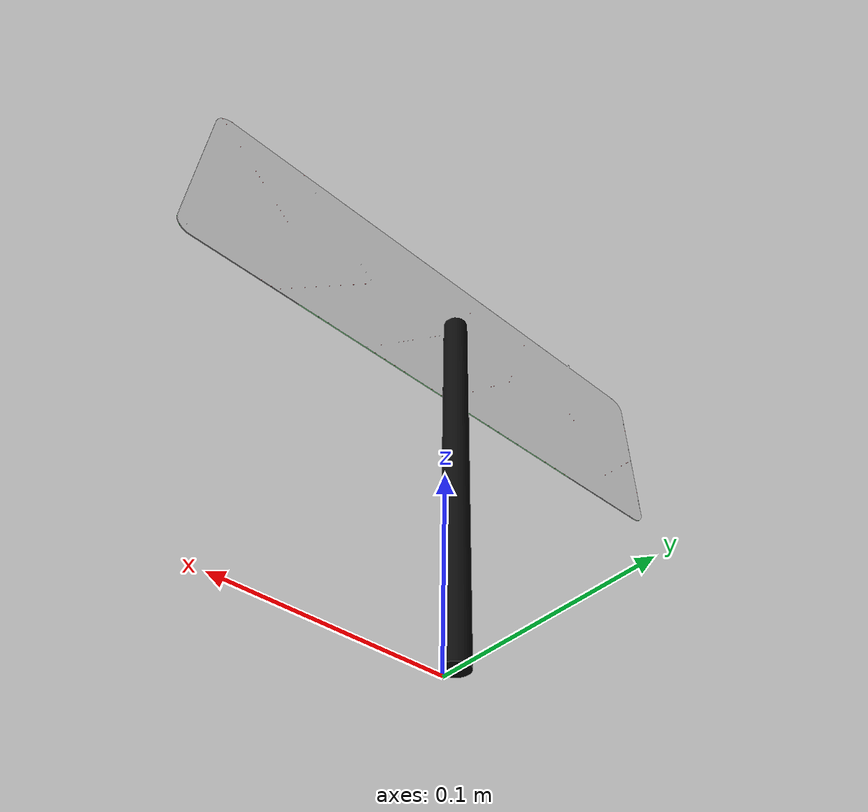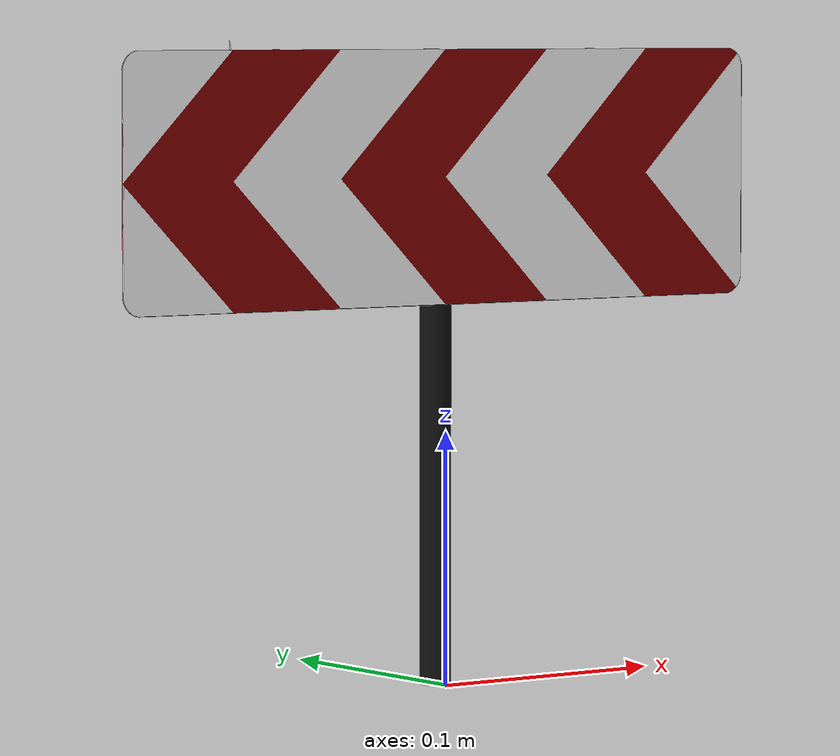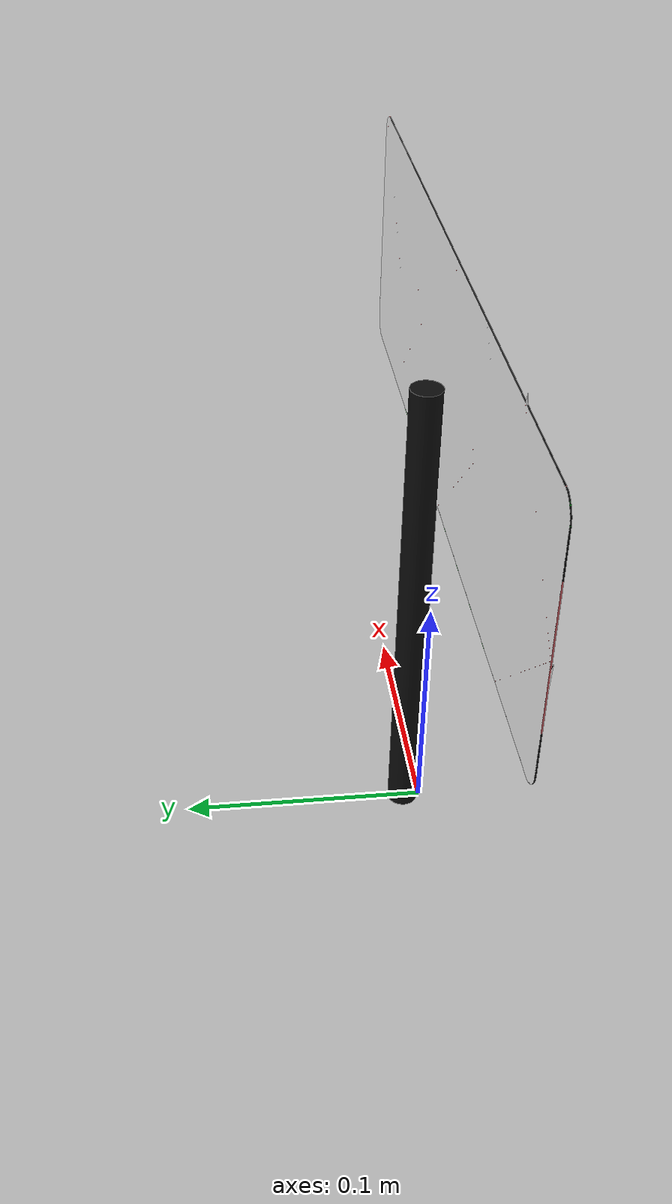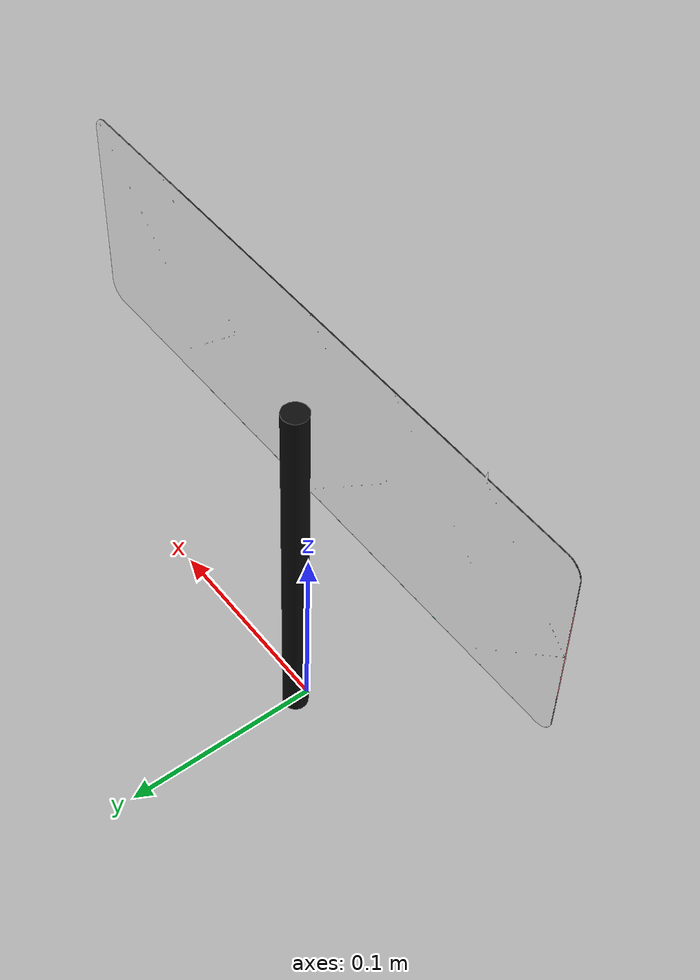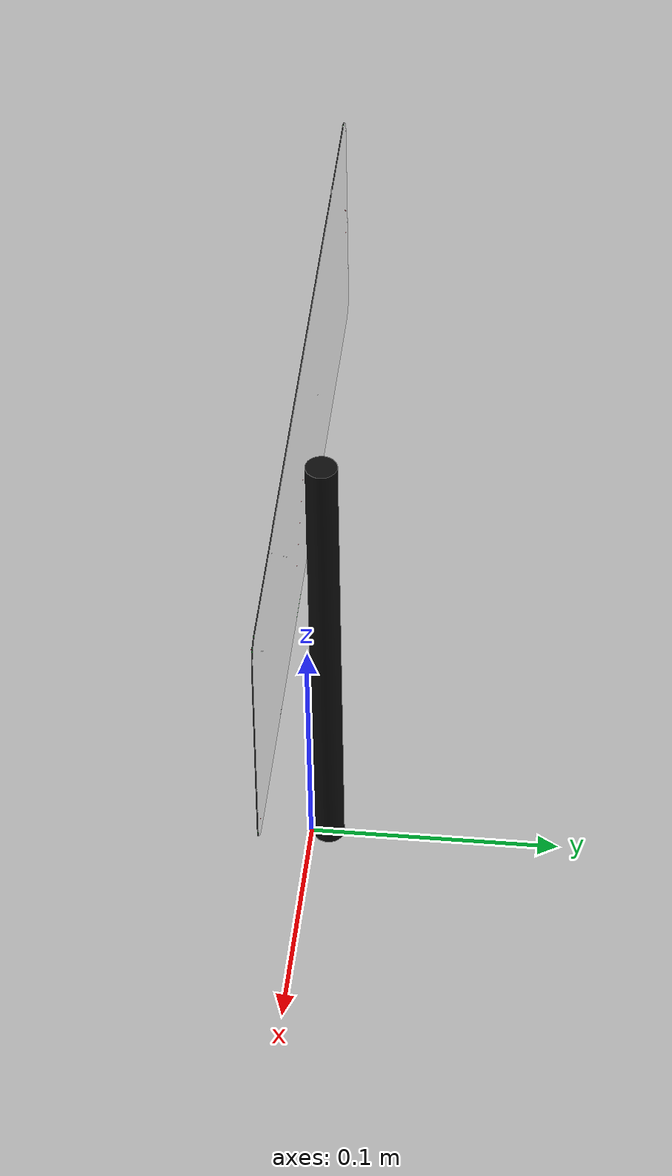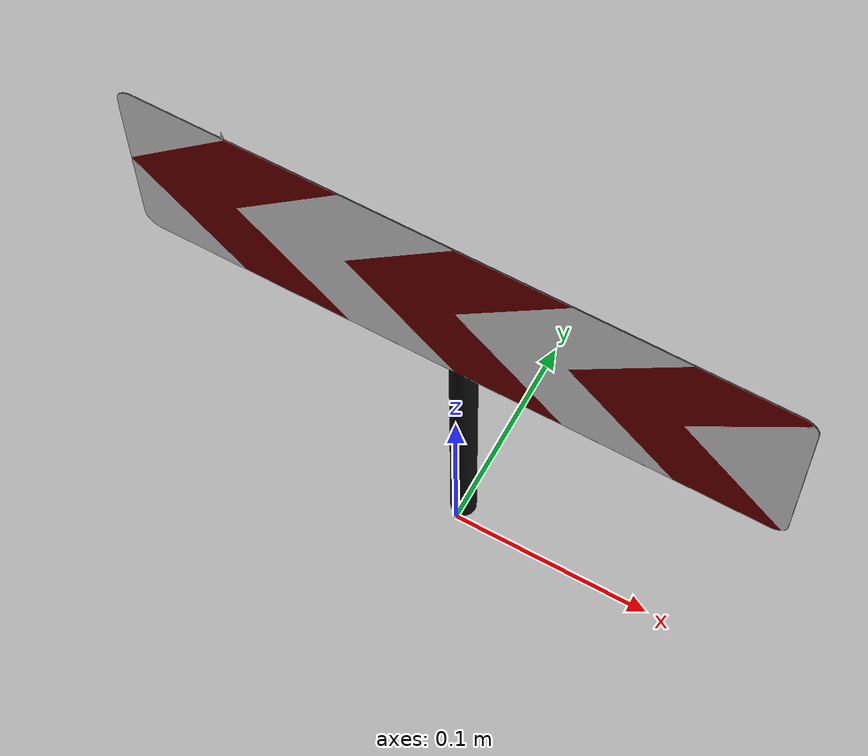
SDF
<?xml version="1.0"?>
<sdf version="1.5">
    <model name="Sharp_turn_left_long_1_leg">
      <pose>0 0 0  0 0 0</pose>
      <static>true</static>
      <link name="body">
        <visual name="visual">
          <geometry>
            <mesh>
	      <uri>model://meshes/Sharp_turn_left_long_1_leg.dae</uri>
	      <scale>1 1 1</scale>
	    </mesh>
          </geometry>
        </visual>
      </link>
    </model>
</sdf>
